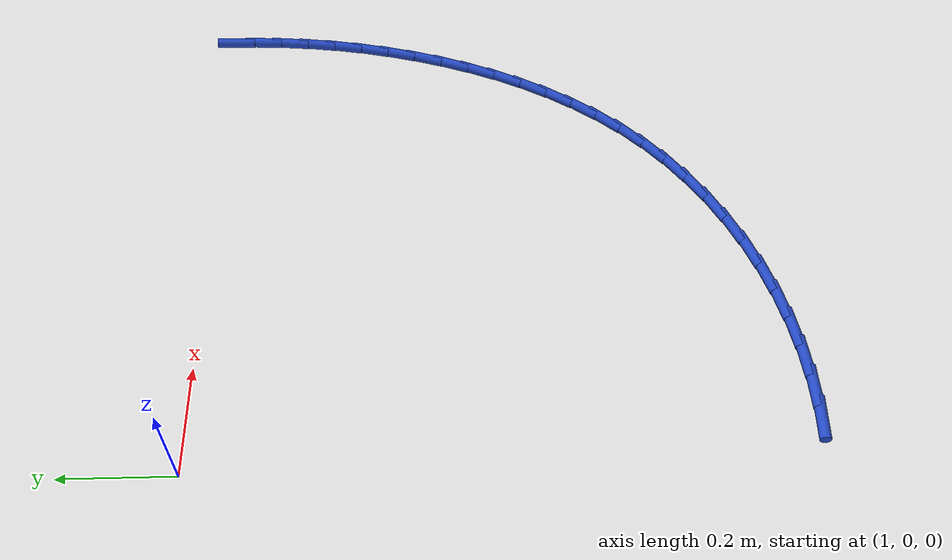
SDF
<sdf version="1.6">
 <world name="default">
  <model name="ground_plane">
   <static>1</static>
   <link name="link">
    <collision name="collision">
     <geometry><plane><normal>0 0 1</normal><size>100 100</size></plane></geometry>
     <surface><friction><ode><mu>100</mu><mu2>50</mu2></ode></friction></surface>
    </collision>
    <visual name="visual">
     <cast_shadows>0</cast_shadows>
     <geometry><plane><normal>0 0 1</normal><size>100 100</size></plane></geometry>
     <material>
      <script><uri>file://media/materials/scripts/gazebo.material</uri><name>Gazebo/WhiteGlow</name></script>
     </material>
    </visual>
   </link>
  </model>
  <model name="line">
   <link name="link_55">
    <pose>2.013346625117517 -0.003576483224392569 0.01 0 1.57 1.5613277972156672</pose>
    <collision name="collision">
     <geometry><cylinder><radius>0.01</radius><length>0.08</length></cylinder></geometry>
    </collision>
    <visual name="visual">
     <material>
      <script><name>Gazebo/Blue</name><uri>file://media/materials/scripts/gazebo.material</uri></script>
     </material>
     <geometry><cylinder><radius>0.01</radius><length>0.08</length></cylinder></geometry>
    </visual>
   </link>
   <link name="link_56">
    <pose>2.0127899405854253 -0.06236786061605823 0.01 0 1.57 1.5188113354061448</pose>
    <collision name="collision">
     <geometry><cylinder><radius>0.01</radius><length>0.08</length></cylinder></geometry>
    </collision>
    <visual name="visual">
     <material>
      <script><name>Gazebo/Blue</name><uri>file://media/materials/scripts/gazebo.material</uri></script>
     </material>
     <geometry><cylinder><radius>0.01</radius><length>0.08</length></cylinder></geometry>
    </visual>
   </link>
   <link name="link_57">
    <pose>2.009734994376097 -0.12108084096426275 0.01 0 1.57 1.4758819203152087</pose>
    <collision name="collision">
     <geometry><cylinder><radius>0.01</radius><length>0.08</length></cylinder></geometry>
    </collision>
    <visual name="visual">
     <material>
      <script><name>Gazebo/Blue</name><uri>file://media/materials/scripts/gazebo.material</uri></script>
     </material>
     <geometry><cylinder><radius>0.01</radius><length>0.08</length></cylinder></geometry>
    </visual>
   </link>
   <link name="link_58">
    <pose>2.004158214035739 -0.17966018506707057 0.01 0 1.57 1.4325819712525392</pose>
    <collision name="collision">
     <geometry><cylinder><radius>0.01</radius><length>0.08</length></cylinder></geometry>
    </collision>
    <visual name="visual">
     <material>
      <script><name>Gazebo/Blue</name><uri>file://media/materials/scripts/gazebo.material</uri></script>
     </material>
     <geometry><cylinder><radius>0.01</radius><length>0.08</length></cylinder></geometry>
    </visual>
   </link>
   <link name="link_59">
    <pose>1.9960360271105582 -0.2380506537225491 0.01 0 1.57 1.3889607827026562</pose>
    <collision name="collision">
     <geometry><cylinder><radius>0.01</radius><length>0.08</length></cylinder></geometry>
    </collision>
    <visual name="visual">
     <material>
      <script><name>Gazebo/Blue</name><uri>file://media/materials/scripts/gazebo.material</uri></script>
     </material>
     <geometry><cylinder><radius>0.01</radius><length>0.08</length></cylinder></geometry>
    </visual>
   </link>
   <link name="link_60">
    <pose>1.9853448611467628 -0.2961970077287629 0.01 0 1.57 1.3450742737363546</pose>
    <collision name="collision">
     <geometry><cylinder><radius>0.01</radius><length>0.08</length></cylinder></geometry>
    </collision>
    <visual name="visual">
     <material>
      <script><name>Gazebo/Blue</name><uri>file://media/materials/scripts/gazebo.material</uri></script>
     </material>
     <geometry><cylinder><radius>0.01</radius><length>0.08</length></cylinder></geometry>
    </visual>
   </link>
   <link name="link_61">
    <pose>1.9720611436905588 -0.3540440078837791 0.01 0 1.57 1.3008200761698456</pose>
    <collision name="collision">
     <geometry><cylinder><radius>0.01</radius><length>0.08</length></cylinder></geometry>
    </collision>
    <visual name="visual">
     <material>
      <script><name>Gazebo/Blue</name><uri>file://media/materials/scripts/gazebo.material</uri></script>
     </material>
     <geometry><cylinder><radius>0.01</radius><length>0.08</length></cylinder></geometry>
    </visual>
   </link>
   <link name="link_62">
    <pose>1.9561570442781562 -0.4115150151862401 0.01 0 1.57 1.2548144705064825</pose>
    <collision name="collision">
     <geometry><cylinder><radius>0.01</radius><length>0.08</length></cylinder></geometry>
    </collision>
    <visual name="visual">
     <material>
      <script><name>Gazebo/Blue</name><uri>file://media/materials/scripts/gazebo.material</uri></script>
     </material>
     <geometry><cylinder><radius>0.01</radius><length>0.08</length></cylinder></geometry>
    </visual>
   </link>
   <link name="link_63">
    <pose>1.9375710440421936 -0.4683640803045321 0.01 0 1.57 1.2060375891229405</pose>
    <collision name="collision">
     <geometry><cylinder><radius>0.01</radius><length>0.08</length></cylinder></geometry>
    </collision>
    <visual name="visual">
     <material>
      <script><name>Gazebo/Blue</name><uri>file://media/materials/scripts/gazebo.material</uri></script>
     </material>
     <geometry><cylinder><radius>0.01</radius><length>0.08</length></cylinder></geometry>
    </visual>
   </link>
   <link name="link_64">
    <pose>1.9162256106201516 -0.5242647736863367 0.01 0 1.57 1.15403223644653</pose>
    <collision name="collision">
     <geometry><cylinder><radius>0.01</radius><length>0.08</length></cylinder></geometry>
    </collision>
    <visual name="visual">
     <material>
      <script><name>Gazebo/Blue</name><uri>file://media/materials/scripts/gazebo.material</uri></script>
     </material>
     <geometry><cylinder><radius>0.01</radius><length>0.08</length></cylinder></geometry>
    </visual>
   </link>
   <link name="link_65">
    <pose>1.8920431143162588 -0.5788901766043322 0.01 0 1.57 1.0983525455537422</pose>
    <collision name="collision">
     <geometry><cylinder><radius>0.01</radius><length>0.08</length></cylinder></geometry>
    </collision>
    <visual name="visual">
     <material>
      <script><name>Gazebo/Blue</name><uri>file://media/materials/scripts/gazebo.material</uri></script>
     </material>
     <geometry><cylinder><radius>0.01</radius><length>0.08</length></cylinder></geometry>
    </visual>
   </link>
   <link name="link_66">
    <pose>1.8649459254347436 -0.6319133703311968 0.01 0 1.57 1.0385754366475952</pose>
    <collision name="collision">
     <geometry><cylinder><radius>0.01</radius><length>0.08</length></cylinder></geometry>
    </collision>
    <visual name="visual">
     <material>
      <script><name>Gazebo/Blue</name><uri>file://media/materials/scripts/gazebo.material</uri></script>
     </material>
     <geometry><cylinder><radius>0.01</radius><length>0.08</length></cylinder></geometry>
    </visual>
   </link>
   <link name="link_67">
    <pose>1.8348564142798334 -0.6830074361396062 0.01 0 1.57 0.9743255434902246</pose>
    <collision name="collision">
     <geometry><cylinder><radius>0.01</radius><length>0.08</length></cylinder></geometry>
    </collision>
    <visual name="visual">
     <material>
      <script><name>Gazebo/Blue</name><uri>file://media/materials/scripts/gazebo.material</uri></script>
     </material>
     <geometry><cylinder><radius>0.01</radius><length>0.08</length></cylinder></geometry>
    </visual>
   </link>
   <link name="link_68">
    <pose>1.801696951155757 -0.7318454553022394 0.01 0 1.57 0.9053113202276929</pose>
    <collision name="collision">
     <geometry><cylinder><radius>0.01</radius><length>0.08</length></cylinder></geometry>
    </collision>
    <visual name="visual">
     <material>
      <script><name>Gazebo/Blue</name><uri>file://media/materials/scripts/gazebo.material</uri></script>
     </material>
     <geometry><cylinder><radius>0.01</radius><length>0.08</length></cylinder></geometry>
    </visual>
   </link>
   <link name="link_69">
    <pose>1.7653899063667435 -0.7781005090917729 0.01 0 1.57 0.8313724049749337</pose>
    <collision name="collision">
     <geometry><cylinder><radius>0.01</radius><length>0.08</length></cylinder></geometry>
    </collision>
    <visual name="visual">
     <material>
      <script><name>Gazebo/Blue</name><uri>file://media/materials/scripts/gazebo.material</uri></script>
     </material>
     <geometry><cylinder><radius>0.01</radius><length>0.08</length></cylinder></geometry>
    </visual>
   </link>
   <link name="link_70">
    <pose>1.725857650217019 -0.8214456787808846 0.01 0 1.57 0.7525393300561267</pose>
    <collision name="collision">
     <geometry><cylinder><radius>0.01</radius><length>0.08</length></cylinder></geometry>
    </collision>
    <visual name="visual">
     <material>
      <script><name>Gazebo/Blue</name><uri>file://media/materials/scripts/gazebo.material</uri></script>
     </material>
     <geometry><cylinder><radius>0.01</radius><length>0.08</length></cylinder></geometry>
    </visual>
   </link>
   <link name="link_71">
    <pose>1.6830227575760035 -0.8615541673750141 0.01 0 1.57 0.6711327631816016</pose>
    <collision name="collision">
     <geometry><cylinder><radius>0.01</radius><length>0.08</length></cylinder></geometry>
    </collision>
    <visual name="visual">
     <material>
      <script><name>Gazebo/Blue</name><uri>file://media/materials/scripts/gazebo.material</uri></script>
     </material>
     <geometry><cylinder><radius>0.01</radius><length>0.08</length></cylinder></geometry>
    </visual>
   </link>
   <link name="link_72">
    <pose>1.6369188514355446 -0.8981652604559626 0.01 0 1.57 0.5926679303772209</pose>
    <collision name="collision">
     <geometry><cylinder><radius>0.01</radius><length>0.08</length></cylinder></geometry>
    </collision>
    <visual name="visual">
     <material>
      <script><name>Gazebo/Blue</name><uri>file://media/materials/scripts/gazebo.material</uri></script>
     </material>
     <geometry><cylinder><radius>0.01</radius><length>0.08</length></cylinder></geometry>
    </visual>
   </link>
   <link name="link_73">
    <pose>1.5878739236331116 -0.931193416776337 0.01 0 1.57 0.517641812845053</pose>
    <collision name="collision">
     <geometry><cylinder><radius>0.01</radius><length>0.08</length></cylinder></geometry>
    </collision>
    <visual name="visual">
     <material>
      <script><name>Gazebo/Blue</name><uri>file://media/materials/scripts/gazebo.material</uri></script>
     </material>
     <geometry><cylinder><radius>0.01</radius><length>0.08</length></cylinder></geometry>
    </visual>
   </link>
   <link name="link_74">
    <pose>1.536264191669533 -0.9605817932424109 0.01 0 1.57 0.44553239717146365</pose>
    <collision name="collision">
     <geometry><cylinder><radius>0.01</radius><length>0.08</length></cylinder></geometry>
    </collision>
    <visual name="visual">
     <material>
      <script><name>Gazebo/Blue</name><uri>file://media/materials/scripts/gazebo.material</uri></script>
     </material>
     <geometry><cylinder><radius>0.01</radius><length>0.08</length></cylinder></geometry>
    </visual>
   </link>
   <link name="link_75">
    <pose>1.4824658730456384 -0.9862735467604539 0.01 0 1.57 0.3757540191414807</pose>
    <collision name="collision">
     <geometry><cylinder><radius>0.01</radius><length>0.08</length></cylinder></geometry>
    </collision>
    <visual name="visual">
     <material>
      <script><name>Gazebo/Blue</name><uri>file://media/materials/scripts/gazebo.material</uri></script>
     </material>
     <geometry><cylinder><radius>0.01</radius><length>0.08</length></cylinder></geometry>
    </visual>
   </link>
   <link name="link_76">
    <pose>1.426855185262257 -1.0082118342367397 0.01 0 1.57 0.30768202856959154</pose>
    <collision name="collision">
     <geometry><cylinder><radius>0.01</radius><length>0.08</length></cylinder></geometry>
    </collision>
    <visual name="visual">
     <material>
      <script><name>Gazebo/Blue</name><uri>file://media/materials/scripts/gazebo.material</uri></script>
     </material>
     <geometry><cylinder><radius>0.01</radius><length>0.08</length></cylinder></geometry>
    </visual>
   </link>
   <link name="link_77">
    <pose>1.36980834582022 -1.026339812577539 0.01 0 1.57 0.240667699852566</pose>
    <collision name="collision">
     <geometry><cylinder><radius>0.01</radius><length>0.08</length></cylinder></geometry>
    </collision>
    <visual name="visual">
     <material>
      <script><name>Gazebo/Blue</name><uri>file://media/materials/scripts/gazebo.material</uri></script>
     </material>
     <geometry><cylinder><radius>0.01</radius><length>0.08</length></cylinder></geometry>
    </visual>
   </link>
   <link name="link_78">
    <pose>1.311701572220355 -1.040600638689124 0.01 0 1.57 0.1740459211548038</pose>
    <collision name="collision">
     <geometry><cylinder><radius>0.01</radius><length>0.08</length></cylinder></geometry>
    </collision>
    <visual name="visual">
     <material>
      <script><name>Gazebo/Blue</name><uri>file://media/materials/scripts/gazebo.material</uri></script>
     </material>
     <geometry><cylinder><radius>0.01</radius><length>0.08</length></cylinder></geometry>
    </visual>
   </link>
   <link name="link_79">
    <pose>1.2529110819634937 -1.050937469477767 0.01 0 1.57 0.1071382377330674</pose>
    <collision name="collision">
     <geometry><cylinder><radius>0.01</radius><length>0.08</length></cylinder></geometry>
    </collision>
    <visual name="visual">
     <material>
      <script><name>Gazebo/Blue</name><uri>file://media/materials/scripts/gazebo.material</uri></script>
     </material>
     <geometry><cylinder><radius>0.01</radius><length>0.08</length></cylinder></geometry>
    </visual>
   </link>
   <link name="link_80">
    <pose>1.1938130925504629 -1.0572934618497387 0.01 0 1.57 0.03969252380548046</pose>
    <collision name="collision">
     <geometry><cylinder><radius>0.01</radius><length>0.08</length></cylinder></geometry>
    </collision>
    <visual name="visual">
     <material>
      <script><name>Gazebo/Blue</name><uri>file://media/materials/scripts/gazebo.material</uri></script>
     </material>
     <geometry><cylinder><radius>0.01</radius><length>0.08</length></cylinder></geometry>
    </visual>
   </link>
   <link name="link_81">
    <pose>1.1347529916664756 -1.0596389382026452 0.01 0 1.57 -0.02601655293623565</pose>
    <collision name="collision">
     <geometry><cylinder><radius>0.01</radius><length>0.08</length></cylinder></geometry>
    </collision>
    <visual name="visual">
     <material>
      <script><name>Gazebo/Blue</name><uri>file://media/materials/scripts/gazebo.material</uri></script>
     </material>
     <geometry><cylinder><radius>0.01</radius><length>0.08</length></cylinder></geometry>
    </visual>
   </link>
   <link name="link_82">
    <pose>1.0758911908721944 -1.0581072114420473 0.01 0 1.57 -0.08880371894105539</pose>
    <collision name="collision">
     <geometry><cylinder><radius>0.01</radius><length>0.08</length></cylinder></geometry>
    </collision>
    <visual name="visual">
     <material>
      <script><name>Gazebo/Blue</name><uri>file://media/materials/scripts/gazebo.material</uri></script>
     </material>
     <geometry><cylinder><radius>0.01</radius><length>0.08</length></cylinder></geometry>
    </visual>
   </link>
  </model>
 </world>
</sdf>
